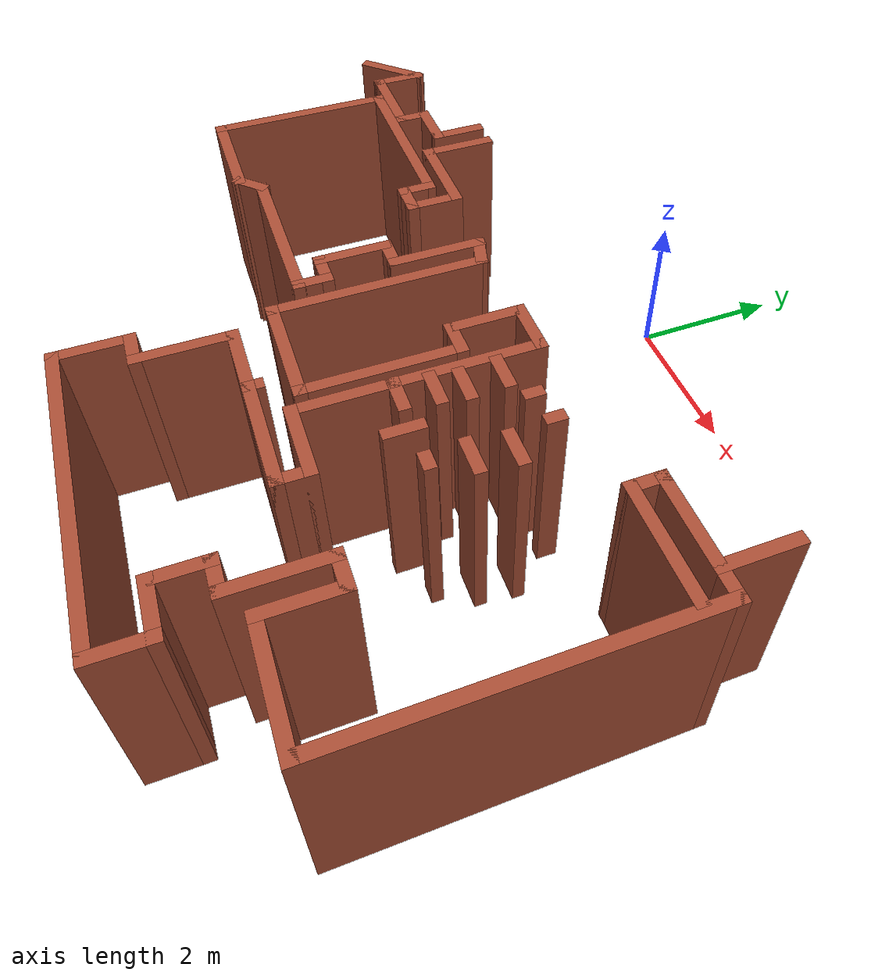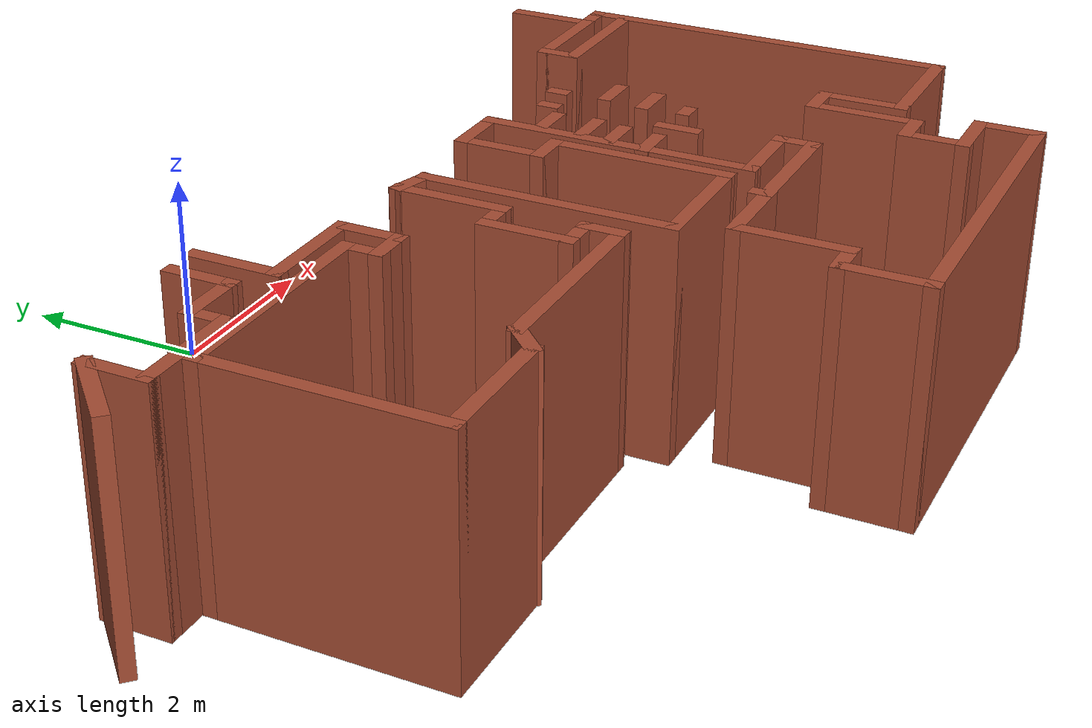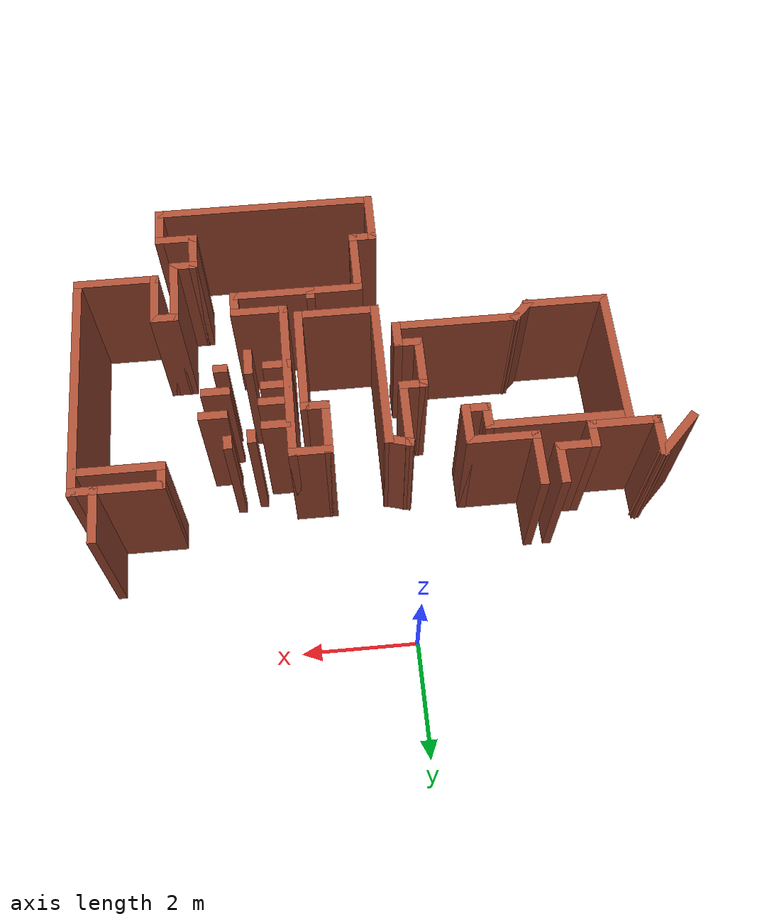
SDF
<sdf version="1.6">
 <model name="map_45">
  <pose>0.29683 -1.90359 0 0 -0 0</pose>
  <link name="Wall_11">
   <collision name="Wall_11_Collision">
    <geometry><box><size>1 0.15 2.5</size></box></geometry>
    <pose>0 0 1.25 0 -0 0</pose>
   </collision>
   <visual name="Wall_11_Visual">
    <pose>0 0 1.25 0 -0 0</pose>
    <geometry><box><size>1 0.15 2.5</size></box></geometry>
    <material>
     <script><uri>file://media/materials/scripts/gazebo.material</uri><name>Gazebo/Bricks</name></script>
     <ambient>1 1 1 1</ambient>
    </material>
    <meta><layer>0</layer></meta>
   </visual>
   <pose>-4.82725 -0.500111 0 0 -0 0.785398</pose>
  </link>
  <link name="Wall_12">
   <collision name="Wall_12_Collision">
    <geometry><box><size>0.75 0.15 2.5</size></box></geometry>
    <pose>0 0 1.25 0 -0 0</pose>
   </collision>
   <visual name="Wall_12_Visual">
    <pose>0 0 1.25 0 -0 0</pose>
    <geometry><box><size>0.75 0.15 2.5</size></box></geometry>
    <material>
     <script><uri>file://media/materials/scripts/gazebo.material</uri><name>Gazebo/Bricks</name></script>
     <ambient>1 1 1 1</ambient>
    </material>
    <meta><layer>0</layer></meta>
   </visual>
   <pose>-4.52673 -0.499591 0 0 -0 -1.5708</pose>
  </link>
  <link name="Wall_130">
   <collision name="Wall_130_Collision">
    <geometry><box><size>1.25 0.15 2.5</size></box></geometry>
    <pose>0 0 1.25 0 -0 0</pose>
   </collision>
   <visual name="Wall_130_Visual">
    <pose>0 0 1.25 0 -0 0</pose>
    <geometry><box><size>1.25 0.15 2.5</size></box></geometry>
    <material>
     <script><uri>file://media/materials/scripts/gazebo.material</uri><name>Gazebo/Bricks</name></script>
     <ambient>1 1 1 1</ambient>
    </material>
    <meta><layer>0</layer></meta>
   </visual>
   <pose>4.25883 -0.34269 0 0 -0 3.14159</pose>
  </link>
  <link name="Wall_131">
   <collision name="Wall_131_Collision">
    <geometry><box><size>0.5 0.15 2.5</size></box></geometry>
    <pose>0 0 1.25 0 -0 0</pose>
   </collision>
   <visual name="Wall_131_Visual">
    <pose>0 0 1.25 0 -0 0</pose>
    <geometry><box><size>0.5 0.15 2.5</size></box></geometry>
    <material>
     <script><uri>file://media/materials/scripts/gazebo.material</uri><name>Gazebo/Bricks</name></script>
     <ambient>1 1 1 1</ambient>
    </material>
    <meta><layer>0</layer></meta>
   </visual>
   <pose>3.70883 -0.51769 0 0 -0 -1.5708</pose>
  </link>
  <link name="Wall_132">
   <collision name="Wall_132_Collision">
    <geometry><box><size>1.5 0.15 2.5</size></box></geometry>
    <pose>0 0 1.25 0 -0 0</pose>
   </collision>
   <visual name="Wall_132_Visual">
    <pose>0 0 1.25 0 -0 0</pose>
    <geometry><box><size>1.5 0.15 2.5</size></box></geometry>
    <material>
     <script><uri>file://media/materials/scripts/gazebo.material</uri><name>Gazebo/Bricks</name></script>
     <ambient>1 1 1 1</ambient>
    </material>
    <meta><layer>0</layer></meta>
   </visual>
   <pose>4.38383 -0.69269 0 0 -0 0</pose>
  </link>
  <link name="Wall_134">
   <collision name="Wall_134_Collision">
    <geometry><box><size>0.5 0.15 2.5</size></box></geometry>
    <pose>0 0 1.25 0 -0 0</pose>
   </collision>
   <visual name="Wall_134_Visual">
    <pose>0 0 1.25 0 -0 0</pose>
    <geometry><box><size>0.5 0.15 2.5</size></box></geometry>
    <material>
     <script><uri>file://media/materials/scripts/gazebo.material</uri><name>Gazebo/Bricks</name></script>
     <ambient>1 1 1 1</ambient>
    </material>
    <meta><layer>0</layer></meta>
   </visual>
   <pose>1.80767 -1.29266 0 0 -0 0</pose>
  </link>
  <link name="Wall_136">
   <collision name="Wall_136_Collision">
    <geometry><box><size>0.5 0.15 2.5</size></box></geometry>
    <pose>0 0 1.25 0 -0 0</pose>
   </collision>
   <visual name="Wall_136_Visual">
    <pose>0 0 1.25 0 -0 0</pose>
    <geometry><box><size>0.5 0.15 2.5</size></box></geometry>
    <material>
     <script><uri>file://media/materials/scripts/gazebo.material</uri><name>Gazebo/Bricks</name></script>
     <ambient>1 1 1 1</ambient>
    </material>
    <meta><layer>0</layer></meta>
   </visual>
   <pose>1.83427 -1.74486 0 0 -0 0</pose>
  </link>
  <link name="Wall_138">
   <collision name="Wall_138_Collision">
    <geometry><box><size>0.5 0.15 2.5</size></box></geometry>
    <pose>0 0 1.25 0 -0 0</pose>
   </collision>
   <visual name="Wall_138_Visual">
    <pose>0 0 1.25 0 -0 0</pose>
    <geometry><box><size>0.5 0.15 2.5</size></box></geometry>
    <material>
     <script><uri>file://media/materials/scripts/gazebo.material</uri><name>Gazebo/Bricks</name></script>
     <ambient>1 1 1 1</ambient>
    </material>
    <meta><layer>0</layer></meta>
   </visual>
   <pose>1.78107 -2.06406 0 0 -0 0</pose>
  </link>
  <link name="Wall_140">
   <collision name="Wall_140_Collision">
    <geometry><box><size>0.5 0.15 2.5</size></box></geometry>
    <pose>0 0 1.25 0 -0 0</pose>
   </collision>
   <visual name="Wall_140_Visual">
    <pose>0 0 1.25 0 -0 0</pose>
    <geometry><box><size>0.5 0.15 2.5</size></box></geometry>
    <material>
     <script><uri>file://media/materials/scripts/gazebo.material</uri><name>Gazebo/Bricks</name></script>
     <ambient>1 1 1 1</ambient>
    </material>
    <meta><layer>0</layer></meta>
   </visual>
   <pose>1.72787 -2.46306 0 0 -0 0</pose>
  </link>
  <link name="Wall_142">
   <collision name="Wall_142_Collision">
    <geometry><box><size>0.25 0.15 2.5</size></box></geometry>
    <pose>0 0 1.25 0 -0 0</pose>
   </collision>
   <visual name="Wall_142_Visual">
    <pose>0 0 1.25 0 -0 0</pose>
    <geometry><box><size>0.25 0.15 2.5</size></box></geometry>
    <material>
     <script><uri>file://media/materials/scripts/gazebo.material</uri><name>Gazebo/Bricks</name></script>
     <ambient>1 1 1 1</ambient>
    </material>
    <meta><layer>0</layer></meta>
   </visual>
   <pose>2.69348 -2.46306 0 0 -0 0</pose>
  </link>
  <link name="Wall_144">
   <collision name="Wall_144_Collision">
    <geometry><box><size>0.5 0.15 2.5</size></box></geometry>
    <pose>0 0 1.25 0 -0 0</pose>
   </collision>
   <visual name="Wall_144_Visual">
    <pose>0 0 1.25 0 -0 0</pose>
    <geometry><box><size>0.5 0.15 2.5</size></box></geometry>
    <material>
     <script><uri>file://media/materials/scripts/gazebo.material</uri><name>Gazebo/Bricks</name></script>
     <ambient>1 1 1 1</ambient>
    </material>
    <meta><layer>0</layer></meta>
   </visual>
   <pose>2.79188 -2.01086 0 0 -0 0</pose>
  </link>
  <link name="Wall_146">
   <collision name="Wall_146_Collision">
    <geometry><box><size>0.5 0.15 2.5</size></box></geometry>
    <pose>0 0 1.25 0 -0 0</pose>
   </collision>
   <visual name="Wall_146_Visual">
    <pose>0 0 1.25 0 -0 0</pose>
    <geometry><box><size>0.5 0.15 2.5</size></box></geometry>
    <material>
     <script><uri>file://media/materials/scripts/gazebo.material</uri><name>Gazebo/Bricks</name></script>
     <ambient>1 1 1 1</ambient>
    </material>
    <meta><layer>0</layer></meta>
   </visual>
   <pose>2.84508 -1.55866 0 0 -0 0</pose>
  </link>
  <link name="Wall_148">
   <collision name="Wall_148_Collision">
    <geometry><box><size>0.25 0.15 2.5</size></box></geometry>
    <pose>0 0 1.25 0 -0 0</pose>
   </collision>
   <visual name="Wall_148_Visual">
    <pose>0 0 1.25 0 -0 0</pose>
    <geometry><box><size>0.25 0.15 2.5</size></box></geometry>
    <material>
     <script><uri>file://media/materials/scripts/gazebo.material</uri><name>Gazebo/Bricks</name></script>
     <ambient>1 1 1 1</ambient>
    </material>
    <meta><layer>0</layer></meta>
   </visual>
   <pose>2.21787 -1.10325 0 0 -0 -1.5708</pose>
  </link>
  <link name="Wall_15">
   <collision name="Wall_15_Collision">
    <geometry><box><size>1.25 0.15 2.5</size></box></geometry>
    <pose>0 0 1.25 0 -0 0</pose>
   </collision>
   <visual name="Wall_15_Visual">
    <pose>0 0 1.25 0 -0 0</pose>
    <geometry><box><size>1.25 0.15 2.5</size></box></geometry>
    <material>
     <script><uri>file://media/materials/scripts/gazebo.material</uri><name>Gazebo/Bricks</name></script>
     <ambient>1 1 1 1</ambient>
    </material>
    <meta><layer>0</layer></meta>
   </visual>
   <pose>-3.97673 -0.799591 0 0 -0 0</pose>
  </link>
  <link name="Wall_150">
   <collision name="Wall_150_Collision">
    <geometry><box><size>0.25 0.15 2.5</size></box></geometry>
    <pose>0 0 1.25 0 -0 0</pose>
   </collision>
   <visual name="Wall_150_Visual">
    <pose>0 0 1.25 0 -0 0</pose>
    <geometry><box><size>0.25 0.15 2.5</size></box></geometry>
    <material>
     <script><uri>file://media/materials/scripts/gazebo.material</uri><name>Gazebo/Bricks</name></script>
     <ambient>1 1 1 1</ambient>
    </material>
    <meta><layer>0</layer></meta>
   </visual>
   <pose>2.61688 -1.02345 0 0 -0 -1.5708</pose>
  </link>
  <link name="Wall_152">
   <collision name="Wall_152_Collision">
    <geometry><box><size>0.5 0.15 2.5</size></box></geometry>
    <pose>0 0 1.25 0 -0 0</pose>
   </collision>
   <visual name="Wall_152_Visual">
    <pose>0 0 1.25 0 -0 0</pose>
    <geometry><box><size>0.5 0.15 2.5</size></box></geometry>
    <material>
     <script><uri>file://media/materials/scripts/gazebo.material</uri><name>Gazebo/Bricks</name></script>
     <ambient>1 1 1 1</ambient>
    </material>
    <meta><layer>0</layer></meta>
   </visual>
   <pose>2.21787 -2.55826 0 0 -0 -1.5708</pose>
  </link>
  <link name="Wall_16">
   <collision name="Wall_16_Collision">
    <geometry><box><size>0.5 0.15 2.5</size></box></geometry>
    <pose>0 0 1.25 0 -0 0</pose>
   </collision>
   <visual name="Wall_16_Visual">
    <pose>0 0 1.25 0 -0 0</pose>
    <geometry><box><size>0.5 0.15 2.5</size></box></geometry>
    <material>
     <script><uri>file://media/materials/scripts/gazebo.material</uri><name>Gazebo/Bricks</name></script>
     <ambient>1 1 1 1</ambient>
    </material>
    <meta><layer>0</layer></meta>
   </visual>
   <pose>-3.42673 -0.624591 0 0 -0 1.5708</pose>
  </link>
  <link name="Wall_17">
   <collision name="Wall_17_Collision">
    <geometry><box><size>0.75 0.15 2.5</size></box></geometry>
    <pose>0 0 1.25 0 -0 0</pose>
   </collision>
   <visual name="Wall_17_Visual">
    <pose>0 0 1.25 0 -0 0</pose>
    <geometry><box><size>0.75 0.15 2.5</size></box></geometry>
    <material>
     <script><uri>file://media/materials/scripts/gazebo.material</uri><name>Gazebo/Bricks</name></script>
     <ambient>1 1 1 1</ambient>
    </material>
    <meta><layer>0</layer></meta>
   </visual>
   <pose>-3.12673 -0.449591 0 0 -0 0</pose>
  </link>
  <link name="Wall_18">
   <collision name="Wall_18_Collision">
    <geometry><box><size>0.75 0.15 2.5</size></box></geometry>
    <pose>0 0 1.25 0 -0 0</pose>
   </collision>
   <visual name="Wall_18_Visual">
    <pose>0 0 1.25 0 -0 0</pose>
    <geometry><box><size>0.75 0.15 2.5</size></box></geometry>
    <material>
     <script><uri>file://media/materials/scripts/gazebo.material</uri><name>Gazebo/Bricks</name></script>
     <ambient>1 1 1 1</ambient>
    </material>
    <meta><layer>0</layer></meta>
   </visual>
   <pose>-2.82673 -0.149591 0 0 -0 1.5708</pose>
  </link>
  <link name="Wall_22">
   <collision name="Wall_22_Collision">
    <geometry><box><size>1 0.15 2.5</size></box></geometry>
    <pose>0 0 1.25 0 -0 0</pose>
   </collision>
   <visual name="Wall_22_Visual">
    <pose>0 0 1.25 0 -0 0</pose>
    <geometry><box><size>1 0.15 2.5</size></box></geometry>
    <material>
     <script><uri>file://media/materials/scripts/gazebo.material</uri><name>Gazebo/Bricks</name></script>
     <ambient>1 1 1 1</ambient>
    </material>
    <meta><layer>0</layer></meta>
   </visual>
   <pose>-2.47673 -0.274591 0 0 -0 -1.5708</pose>
  </link>
  <link name="Wall_23">
   <collision name="Wall_23_Collision">
    <geometry><box><size>1.25 0.15 2.5</size></box></geometry>
    <pose>0 0 1.25 0 -0 0</pose>
   </collision>
   <visual name="Wall_23_Visual">
    <pose>0 0 1.25 0 -0 0</pose>
    <geometry><box><size>1.25 0.15 2.5</size></box></geometry>
    <material>
     <script><uri>file://media/materials/scripts/gazebo.material</uri><name>Gazebo/Bricks</name></script>
     <ambient>1 1 1 1</ambient>
    </material>
    <meta><layer>0</layer></meta>
   </visual>
   <pose>-1.92673 -0.699591 0 0 -0 0</pose>
  </link>
  <link name="Wall_24">
   <collision name="Wall_24_Collision">
    <geometry><box><size>0.75 0.15 2.5</size></box></geometry>
    <pose>0 0 1.25 0 -0 0</pose>
   </collision>
   <visual name="Wall_24_Visual">
    <pose>0 0 1.25 0 -0 0</pose>
    <geometry><box><size>0.75 0.15 2.5</size></box></geometry>
    <material>
     <script><uri>file://media/materials/scripts/gazebo.material</uri><name>Gazebo/Bricks</name></script>
     <ambient>1 1 1 1</ambient>
    </material>
    <meta><layer>0</layer></meta>
   </visual>
   <pose>-1.37673 -0.999591 0 0 -0 -1.5708</pose>
  </link>
  <link name="Wall_25">
   <collision name="Wall_25_Collision">
    <geometry><box><size>0.5 0.15 2.5</size></box></geometry>
    <pose>0 0 1.25 0 -0 0</pose>
   </collision>
   <visual name="Wall_25_Visual">
    <pose>0 0 1.25 0 -0 0</pose>
    <geometry><box><size>0.5 0.15 2.5</size></box></geometry>
    <material>
     <script><uri>file://media/materials/scripts/gazebo.material</uri><name>Gazebo/Bricks</name></script>
     <ambient>1 1 1 1</ambient>
    </material>
    <meta><layer>0</layer></meta>
   </visual>
   <pose>-1.55173 -1.29959 0 0 -0 3.14159</pose>
  </link>
  <link name="Wall_26">
   <collision name="Wall_26_Collision">
    <geometry><box><size>0.5 0.15 2.5</size></box></geometry>
    <pose>0 0 1.25 0 -0 0</pose>
   </collision>
   <visual name="Wall_26_Visual">
    <pose>0 0 1.25 0 -0 0</pose>
    <geometry><box><size>0.5 0.15 2.5</size></box></geometry>
    <material>
     <script><uri>file://media/materials/scripts/gazebo.material</uri><name>Gazebo/Bricks</name></script>
     <ambient>1 1 1 1</ambient>
    </material>
    <meta><layer>0</layer></meta>
   </visual>
   <pose>-1.72673 -1.12459 0 0 -0 1.5708</pose>
  </link>
  <link name="Wall_27">
   <collision name="Wall_27_Collision">
    <geometry><box><size>2.5 0.15 2.5</size></box></geometry>
    <pose>0 0 1.25 0 -0 0</pose>
   </collision>
   <visual name="Wall_27_Visual">
    <pose>0 0 1.25 0 -0 0</pose>
    <geometry><box><size>2.5 0.15 2.5</size></box></geometry>
    <material>
     <script><uri>file://media/materials/scripts/gazebo.material</uri><name>Gazebo/Bricks</name></script>
     <ambient>1 1 1 1</ambient>
    </material>
    <meta><layer>0</layer></meta>
   </visual>
   <pose>-2.90173 -0.949591 0 0 -0 3.14159</pose>
  </link>
  <link name="Wall_28">
   <collision name="Wall_28_Collision">
    <geometry><box><size>2.5 0.15 2.5</size></box></geometry>
    <pose>0 0 1.25 0 -0 0</pose>
   </collision>
   <visual name="Wall_28_Visual">
    <pose>0 0 1.25 0 -0 0</pose>
    <geometry><box><size>2.5 0.15 2.5</size></box></geometry>
    <material>
     <script><uri>file://media/materials/scripts/gazebo.material</uri><name>Gazebo/Bricks</name></script>
     <ambient>1 1 1 1</ambient>
    </material>
    <meta><layer>0</layer></meta>
   </visual>
   <pose>-4.07673 -2.12459 0 0 -0 -1.5708</pose>
  </link>
  <link name="Wall_29">
   <collision name="Wall_29_Collision">
    <geometry><box><size>1.5 0.15 2.5</size></box></geometry>
    <pose>0 0 1.25 0 -0 0</pose>
   </collision>
   <visual name="Wall_29_Visual">
    <pose>0 0 1.25 0 -0 0</pose>
    <geometry><box><size>1.5 0.15 2.5</size></box></geometry>
    <material>
     <script><uri>file://media/materials/scripts/gazebo.material</uri><name>Gazebo/Bricks</name></script>
     <ambient>1 1 1 1</ambient>
    </material>
    <meta><layer>0</layer></meta>
   </visual>
   <pose>-3.40173 -3.29959 0 0 -0 0</pose>
  </link>
  <link name="Wall_30">
   <collision name="Wall_30_Collision">
    <geometry><box><size>0.5 0.15 2.5</size></box></geometry>
    <pose>0 0 1.25 0 -0 0</pose>
   </collision>
   <visual name="Wall_30_Visual">
    <pose>0 0 1.25 0 -0 0</pose>
    <geometry><box><size>0.5 0.15 2.5</size></box></geometry>
    <material>
     <script><uri>file://media/materials/scripts/gazebo.material</uri><name>Gazebo/Bricks</name></script>
     <ambient>1 1 1 1</ambient>
    </material>
    <meta><layer>0</layer></meta>
   </visual>
   <pose>-2.60298 -3.17585 0 0 -0 0.785398</pose>
  </link>
  <link name="Wall_31">
   <collision name="Wall_31_Collision">
    <geometry><box><size>2.25 0.15 2.5</size></box></geometry>
    <pose>0 0 1.25 0 -0 0</pose>
   </collision>
   <visual name="Wall_31_Visual">
    <pose>0 0 1.25 0 -0 0</pose>
    <geometry><box><size>2.25 0.15 2.5</size></box></geometry>
    <material>
     <script><uri>file://media/materials/scripts/gazebo.material</uri><name>Gazebo/Bricks</name></script>
     <ambient>1 1 1 1</ambient>
    </material>
    <meta><layer>0</layer></meta>
   </visual>
   <pose>-1.42924 -3.0521 0 0 -0 0</pose>
  </link>
  <link name="Wall_32">
   <collision name="Wall_32_Collision">
    <geometry><box><size>0.5 0.15 2.5</size></box></geometry>
    <pose>0 0 1.25 0 -0 0</pose>
   </collision>
   <visual name="Wall_32_Visual">
    <pose>0 0 1.25 0 -0 0</pose>
    <geometry><box><size>0.5 0.15 2.5</size></box></geometry>
    <material>
     <script><uri>file://media/materials/scripts/gazebo.material</uri><name>Gazebo/Bricks</name></script>
     <ambient>1 1 1 1</ambient>
    </material>
    <meta><layer>0</layer></meta>
   </visual>
   <pose>-0.37924 -2.8771 0 0 -0 1.5708</pose>
  </link>
  <link name="Wall_33">
   <collision name="Wall_33_Collision">
    <geometry><box><size>0.5 0.15 2.5</size></box></geometry>
    <pose>0 0 1.25 0 -0 0</pose>
   </collision>
   <visual name="Wall_33_Visual">
    <pose>0 0 1.25 0 -0 0</pose>
    <geometry><box><size>0.5 0.15 2.5</size></box></geometry>
    <material>
     <script><uri>file://media/materials/scripts/gazebo.material</uri><name>Gazebo/Bricks</name></script>
     <ambient>1 1 1 1</ambient>
    </material>
    <meta><layer>0</layer></meta>
   </visual>
   <pose>-0.55424 -2.7021 0 0 -0 3.14159</pose>
  </link>
  <link name="Wall_34">
   <collision name="Wall_34_Collision">
    <geometry><box><size>1 0.15 2.5</size></box></geometry>
    <pose>0 0 1.25 0 -0 0</pose>
   </collision>
   <visual name="Wall_34_Visual">
    <pose>0 0 1.25 0 -0 0</pose>
    <geometry><box><size>1 0.15 2.5</size></box></geometry>
    <material>
     <script><uri>file://media/materials/scripts/gazebo.material</uri><name>Gazebo/Bricks</name></script>
     <ambient>1 1 1 1</ambient>
    </material>
    <meta><layer>0</layer></meta>
   </visual>
   <pose>-0.72924 -2.2771 0 0 -0 1.5708</pose>
  </link>
  <link name="Wall_37">
   <collision name="Wall_37_Collision">
    <geometry><box><size>0.5 0.15 2.5</size></box></geometry>
    <pose>0 0 1.25 0 -0 0</pose>
   </collision>
   <visual name="Wall_37_Visual">
    <pose>0 0 1.25 0 -0 0</pose>
    <geometry><box><size>0.5 0.15 2.5</size></box></geometry>
    <material>
     <script><uri>file://media/materials/scripts/gazebo.material</uri><name>Gazebo/Bricks</name></script>
     <ambient>1 1 1 1</ambient>
    </material>
    <meta><layer>0</layer></meta>
   </visual>
   <pose>-0.55424 -1.8521 0 0 -0 0</pose>
  </link>
  <link name="Wall_40">
   <collision name="Wall_40_Collision">
    <geometry><box><size>1.25 0.15 2.5</size></box></geometry>
    <pose>0 0 1.25 0 -0 0</pose>
   </collision>
   <visual name="Wall_40_Visual">
    <pose>0 0 1.25 0 -0 0</pose>
    <geometry><box><size>1.25 0.15 2.5</size></box></geometry>
    <material>
     <script><uri>file://media/materials/scripts/gazebo.material</uri><name>Gazebo/Bricks</name></script>
     <ambient>1 1 1 1</ambient>
    </material>
    <meta><layer>0</layer></meta>
   </visual>
   <pose>-0.37924 -1.3021 0 0 -0 1.5708</pose>
  </link>
  <link name="Wall_41">
   <collision name="Wall_41_Collision">
    <geometry><box><size>0.5 0.15 2.5</size></box></geometry>
    <pose>0 0 1.25 0 -0 0</pose>
   </collision>
   <visual name="Wall_41_Visual">
    <pose>0 0 1.25 0 -0 0</pose>
    <geometry><box><size>0.5 0.15 2.5</size></box></geometry>
    <material>
     <script><uri>file://media/materials/scripts/gazebo.material</uri><name>Gazebo/Bricks</name></script>
     <ambient>1 1 1 1</ambient>
    </material>
    <meta><layer>0</layer></meta>
   </visual>
   <pose>-0.210203 -0.797397 0 0 -0 -0.261799</pose>
  </link>
  <link name="Wall_42">
   <collision name="Wall_42_Collision">
    <geometry><box><size>2.75 0.15 2.5</size></box></geometry>
    <pose>0 0 1.25 0 -0 0</pose>
   </collision>
   <visual name="Wall_42_Visual">
    <pose>0 0 1.25 0 -0 0</pose>
    <geometry><box><size>2.75 0.15 2.5</size></box></geometry>
    <material>
     <script><uri>file://media/materials/scripts/gazebo.material</uri><name>Gazebo/Bricks</name></script>
     <ambient>1 1 1 1</ambient>
    </material>
    <meta><layer>0</layer></meta>
   </visual>
   <pose>-0.041166 -2.14269 0 0 -0 -1.5708</pose>
  </link>
  <link name="Wall_45">
   <collision name="Wall_45_Collision">
    <geometry><box><size>1.5 0.15 2.5</size></box></geometry>
    <pose>0 0 1.25 0 -0 0</pose>
   </collision>
   <visual name="Wall_45_Visual">
    <pose>0 0 1.25 0 -0 0</pose>
    <geometry><box><size>1.5 0.15 2.5</size></box></geometry>
    <material>
     <script><uri>file://media/materials/scripts/gazebo.material</uri><name>Gazebo/Bricks</name></script>
     <ambient>1 1 1 1</ambient>
    </material>
    <meta><layer>0</layer></meta>
   </visual>
   <pose>0.633834 -3.44269 0 0 -0 0</pose>
  </link>
  <link name="Wall_46">
   <collision name="Wall_46_Collision">
    <geometry><box><size>2 0.15 2.5</size></box></geometry>
    <pose>0 0 1.25 0 -0 0</pose>
   </collision>
   <visual name="Wall_46_Visual">
    <pose>0 0 1.25 0 -0 0</pose>
    <geometry><box><size>2 0.15 2.5</size></box></geometry>
    <material>
     <script><uri>file://media/materials/scripts/gazebo.material</uri><name>Gazebo/Bricks</name></script>
     <ambient>1 1 1 1</ambient>
    </material>
    <meta><layer>0</layer></meta>
   </visual>
   <pose>1.30883 -2.51769 0 0 -0 1.5708</pose>
  </link>
  <link name="Wall_47">
   <collision name="Wall_47_Collision">
    <geometry><box><size>0.5 0.15 2.5</size></box></geometry>
    <pose>0 0 1.25 0 -0 0</pose>
   </collision>
   <visual name="Wall_47_Visual">
    <pose>0 0 1.25 0 -0 0</pose>
    <geometry><box><size>0.5 0.15 2.5</size></box></geometry>
    <material>
     <script><uri>file://media/materials/scripts/gazebo.material</uri><name>Gazebo/Bricks</name></script>
     <ambient>1 1 1 1</ambient>
    </material>
    <meta><layer>0</layer></meta>
   </visual>
   <pose>1.13383 -1.59269 0 0 -0 3.14159</pose>
  </link>
  <link name="Wall_48">
   <collision name="Wall_48_Collision">
    <geometry><box><size>1 0.15 2.5</size></box></geometry>
    <pose>0 0 1.25 0 -0 0</pose>
   </collision>
   <visual name="Wall_48_Visual">
    <pose>0 0 1.25 0 -0 0</pose>
    <geometry><box><size>1 0.15 2.5</size></box></geometry>
    <material>
     <script><uri>file://media/materials/scripts/gazebo.material</uri><name>Gazebo/Bricks</name></script>
     <ambient>1 1 1 1</ambient>
    </material>
    <meta><layer>0</layer></meta>
   </visual>
   <pose>0.958834 -1.16769 0 0 -0 1.5708</pose>
  </link>
  <link name="Wall_49">
   <collision name="Wall_49_Collision">
    <geometry><box><size>0.75 0.15 2.5</size></box></geometry>
    <pose>0 0 1.25 0 -0 0</pose>
   </collision>
   <visual name="Wall_49_Visual">
    <pose>0 0 1.25 0 -0 0</pose>
    <geometry><box><size>0.75 0.15 2.5</size></box></geometry>
    <material>
     <script><uri>file://media/materials/scripts/gazebo.material</uri><name>Gazebo/Bricks</name></script>
     <ambient>1 1 1 1</ambient>
    </material>
    <meta><layer>0</layer></meta>
   </visual>
   <pose>1.25883 -0.74269 0 0 -0 0</pose>
  </link>
  <link name="Wall_50">
   <collision name="Wall_50_Collision">
    <geometry><box><size>3 0.15 2.5</size></box></geometry>
    <pose>0 0 1.25 0 -0 0</pose>
   </collision>
   <visual name="Wall_50_Visual">
    <pose>0 0 1.25 0 -0 0</pose>
    <geometry><box><size>3 0.15 2.5</size></box></geometry>
    <material>
     <script><uri>file://media/materials/scripts/gazebo.material</uri><name>Gazebo/Bricks</name></script>
     <ambient>1 1 1 1</ambient>
    </material>
    <meta><layer>0</layer></meta>
   </visual>
   <pose>1.55883 -2.16769 0 0 -0 -1.5708</pose>
  </link>
  <link name="Wall_51">
   <collision name="Wall_51_Collision">
    <geometry><box><size>1 0.15 2.5</size></box></geometry>
    <pose>0 0 1.25 0 -0 0</pose>
   </collision>
   <visual name="Wall_51_Visual">
    <pose>0 0 1.25 0 -0 0</pose>
    <geometry><box><size>1 0.15 2.5</size></box></geometry>
    <material>
     <script><uri>file://media/materials/scripts/gazebo.material</uri><name>Gazebo/Bricks</name></script>
     <ambient>1 1 1 1</ambient>
    </material>
    <meta><layer>0</layer></meta>
   </visual>
   <pose>1.98383 -3.59269 0 0 -0 0</pose>
  </link>
  <link name="Wall_52">
   <collision name="Wall_52_Collision">
    <geometry><box><size>0.5 0.15 2.5</size></box></geometry>
    <pose>0 0 1.25 0 -0 0</pose>
   </collision>
   <visual name="Wall_52_Visual">
    <pose>0 0 1.25 0 -0 0</pose>
    <geometry><box><size>0.5 0.15 2.5</size></box></geometry>
    <material>
     <script><uri>file://media/materials/scripts/gazebo.material</uri><name>Gazebo/Bricks</name></script>
     <ambient>1 1 1 1</ambient>
    </material>
    <meta><layer>0</layer></meta>
   </visual>
   <pose>2.40883 -3.76769 0 0 -0 -1.5708</pose>
  </link>
  <link name="Wall_53">
   <collision name="Wall_53_Collision">
    <geometry><box><size>1.5 0.15 2.5</size></box></geometry>
    <pose>0 0 1.25 0 -0 0</pose>
   </collision>
   <visual name="Wall_53_Visual">
    <pose>0 0 1.25 0 -0 0</pose>
    <geometry><box><size>1.5 0.15 2.5</size></box></geometry>
    <material>
     <script><uri>file://media/materials/scripts/gazebo.material</uri><name>Gazebo/Bricks</name></script>
     <ambient>1 1 1 1</ambient>
    </material>
    <meta><layer>0</layer></meta>
   </visual>
   <pose>1.73383 -3.94269 0 0 -0 3.14159</pose>
  </link>
  <link name="Wall_54">
   <collision name="Wall_54_Collision">
    <geometry><box><size>0.25 0.15 2.5</size></box></geometry>
    <pose>0 0 1.25 0 -0 0</pose>
   </collision>
   <visual name="Wall_54_Visual">
    <pose>0 0 1.25 0 -0 0</pose>
    <geometry><box><size>0.25 0.15 2.5</size></box></geometry>
    <material>
     <script><uri>file://media/materials/scripts/gazebo.material</uri><name>Gazebo/Bricks</name></script>
     <ambient>1 1 1 1</ambient>
    </material>
    <meta><layer>0</layer></meta>
   </visual>
   <pose>1.05883 -3.89269 0 0 -0 1.5708</pose>
  </link>
  <link name="Wall_57">
   <collision name="Wall_57_Collision">
    <geometry><box><size>1 0.15 2.5</size></box></geometry>
    <pose>0 0 1.25 0 -0 0</pose>
   </collision>
   <visual name="Wall_57_Visual">
    <pose>0 0 1.25 0 -0 0</pose>
    <geometry><box><size>1 0.15 2.5</size></box></geometry>
    <material>
     <script><uri>file://media/materials/scripts/gazebo.material</uri><name>Gazebo/Bricks</name></script>
     <ambient>1 1 1 1</ambient>
    </material>
    <meta><layer>0</layer></meta>
   </visual>
   <pose>0.633834 -3.94269 0 0 -0 3.14159</pose>
  </link>
  <link name="Wall_58">
   <collision name="Wall_58_Collision">
    <geometry><box><size>1.25 0.15 2.5</size></box></geometry>
    <pose>0 0 1.25 0 -0 0</pose>
   </collision>
   <visual name="Wall_58_Visual">
    <pose>0 0 1.25 0 -0 0</pose>
    <geometry><box><size>1.25 0.15 2.5</size></box></geometry>
    <material>
     <script><uri>file://media/materials/scripts/gazebo.material</uri><name>Gazebo/Bricks</name></script>
     <ambient>1 1 1 1</ambient>
    </material>
    <meta><layer>0</layer></meta>
   </visual>
   <pose>0.208834 -4.49269 0 0 -0 -1.5708</pose>
  </link>
  <link name="Wall_59">
   <collision name="Wall_59_Collision">
    <geometry><box><size>0.5 0.15 2.5</size></box></geometry>
    <pose>0 0 1.25 0 -0 0</pose>
   </collision>
   <visual name="Wall_59_Visual">
    <pose>0 0 1.25 0 -0 0</pose>
    <geometry><box><size>0.5 0.15 2.5</size></box></geometry>
    <material>
     <script><uri>file://media/materials/scripts/gazebo.material</uri><name>Gazebo/Bricks</name></script>
     <ambient>1 1 1 1</ambient>
    </material>
    <meta><layer>0</layer></meta>
   </visual>
   <pose>0.033834 -5.04269 0 0 -0 3.14159</pose>
  </link>
  <link name="Wall_60">
   <collision name="Wall_60_Collision">
    <geometry><box><size>1 0.15 2.5</size></box></geometry>
    <pose>0 0 1.25 0 -0 0</pose>
   </collision>
   <visual name="Wall_60_Visual">
    <pose>0 0 1.25 0 -0 0</pose>
    <geometry><box><size>1 0.15 2.5</size></box></geometry>
    <material>
     <script><uri>file://media/materials/scripts/gazebo.material</uri><name>Gazebo/Bricks</name></script>
     <ambient>1 1 1 1</ambient>
    </material>
    <meta><layer>0</layer></meta>
   </visual>
   <pose>-0.141166 -5.46769 0 0 -0 -1.5708</pose>
  </link>
  <link name="Wall_61">
   <collision name="Wall_61_Collision">
    <geometry><box><size>4 0.15 2.5</size></box></geometry>
    <pose>0 0 1.25 0 -0 0</pose>
   </collision>
   <visual name="Wall_61_Visual">
    <pose>0 0 1.25 0 -0 0</pose>
    <geometry><box><size>4 0.15 2.5</size></box></geometry>
    <material>
     <script><uri>file://media/materials/scripts/gazebo.material</uri><name>Gazebo/Bricks</name></script>
     <ambient>1 1 1 1</ambient>
    </material>
    <meta><layer>0</layer></meta>
   </visual>
   <pose>1.78383 -5.89269 0 0 -0 0</pose>
  </link>
  <link name="Wall_62">
   <collision name="Wall_62_Collision">
    <geometry><box><size>0.75 0.15 2.5</size></box></geometry>
    <pose>0 0 1.25 0 -0 0</pose>
   </collision>
   <visual name="Wall_62_Visual">
    <pose>0 0 1.25 0 -0 0</pose>
    <geometry><box><size>0.75 0.15 2.5</size></box></geometry>
    <material>
     <script><uri>file://media/materials/scripts/gazebo.material</uri><name>Gazebo/Bricks</name></script>
     <ambient>1 1 1 1</ambient>
    </material>
    <meta><layer>0</layer></meta>
   </visual>
   <pose>3.70883 -5.59269 0 0 -0 1.5708</pose>
  </link>
  <link name="Wall_63">
   <collision name="Wall_63_Collision">
    <geometry><box><size>0.75 0.15 2.5</size></box></geometry>
    <pose>0 0 1.25 0 -0 0</pose>
   </collision>
   <visual name="Wall_63_Visual">
    <pose>0 0 1.25 0 -0 0</pose>
    <geometry><box><size>0.75 0.15 2.5</size></box></geometry>
    <material>
     <script><uri>file://media/materials/scripts/gazebo.material</uri><name>Gazebo/Bricks</name></script>
     <ambient>1 1 1 1</ambient>
    </material>
    <meta><layer>0</layer></meta>
   </visual>
   <pose>3.40883 -5.29269 0 0 -0 3.14159</pose>
  </link>
  <link name="Wall_64">
   <collision name="Wall_64_Collision">
    <geometry><box><size>0.75 0.15 2.5</size></box></geometry>
    <pose>0 0 1.25 0 -0 0</pose>
   </collision>
   <visual name="Wall_64_Visual">
    <pose>0 0 1.25 0 -0 0</pose>
    <geometry><box><size>0.75 0.15 2.5</size></box></geometry>
    <material>
     <script><uri>file://media/materials/scripts/gazebo.material</uri><name>Gazebo/Bricks</name></script>
     <ambient>1 1 1 1</ambient>
    </material>
    <meta><layer>0</layer></meta>
   </visual>
   <pose>3.10883 -4.99269 0 0 -0 1.5708</pose>
  </link>
  <link name="Wall_65">
   <collision name="Wall_65_Collision">
    <geometry><box><size>0.5 0.15 2.5</size></box></geometry>
    <pose>0 0 1.25 0 -0 0</pose>
   </collision>
   <visual name="Wall_65_Visual">
    <pose>0 0 1.25 0 -0 0</pose>
    <geometry><box><size>0.5 0.15 2.5</size></box></geometry>
    <material>
     <script><uri>file://media/materials/scripts/gazebo.material</uri><name>Gazebo/Bricks</name></script>
     <ambient>1 1 1 1</ambient>
    </material>
    <meta><layer>0</layer></meta>
   </visual>
   <pose>3.28383 -4.69269 0 0 -0 0</pose>
  </link>
  <link name="Wall_66">
   <collision name="Wall_66_Collision">
    <geometry><box><size>1.25 0.15 2.5</size></box></geometry>
    <pose>0 0 1.25 0 -0 0</pose>
   </collision>
   <visual name="Wall_66_Visual">
    <pose>0 0 1.25 0 -0 0</pose>
    <geometry><box><size>1.25 0.15 2.5</size></box></geometry>
    <material>
     <script><uri>file://media/materials/scripts/gazebo.material</uri><name>Gazebo/Bricks</name></script>
     <ambient>1 1 1 1</ambient>
    </material>
    <meta><layer>0</layer></meta>
   </visual>
   <pose>3.45883 -4.14269 0 0 -0 1.5708</pose>
  </link>
  <link name="Wall_67">
   <collision name="Wall_67_Collision">
    <geometry><box><size>0.5 0.15 2.5</size></box></geometry>
    <pose>0 0 1.25 0 -0 0</pose>
   </collision>
   <visual name="Wall_67_Visual">
    <pose>0 0 1.25 0 -0 0</pose>
    <geometry><box><size>0.5 0.15 2.5</size></box></geometry>
    <material>
     <script><uri>file://media/materials/scripts/gazebo.material</uri><name>Gazebo/Bricks</name></script>
     <ambient>1 1 1 1</ambient>
    </material>
    <meta><layer>0</layer></meta>
   </visual>
   <pose>3.63383 -3.59269 0 0 -0 0</pose>
  </link>
  <link name="Wall_68">
   <collision name="Wall_68_Collision">
    <geometry><box><size>1 0.15 2.5</size></box></geometry>
    <pose>0 0 1.25 0 -0 0</pose>
   </collision>
   <visual name="Wall_68_Visual">
    <pose>0 0 1.25 0 -0 0</pose>
    <geometry><box><size>1 0.15 2.5</size></box></geometry>
    <material>
     <script><uri>file://media/materials/scripts/gazebo.material</uri><name>Gazebo/Bricks</name></script>
     <ambient>1 1 1 1</ambient>
    </material>
    <meta><layer>0</layer></meta>
   </visual>
   <pose>3.80883 -4.01769 0 0 -0 -1.5708</pose>
  </link>
  <link name="Wall_69">
   <collision name="Wall_69_Collision">
    <geometry><box><size>1.5 0.15 2.5</size></box></geometry>
    <pose>0 0 1.25 0 -0 0</pose>
   </collision>
   <visual name="Wall_69_Visual">
    <pose>0 0 1.25 0 -0 0</pose>
    <geometry><box><size>1.5 0.15 2.5</size></box></geometry>
    <material>
     <script><uri>file://media/materials/scripts/gazebo.material</uri><name>Gazebo/Bricks</name></script>
     <ambient>1 1 1 1</ambient>
    </material>
    <meta><layer>0</layer></meta>
   </visual>
   <pose>4.48383 -4.44269 0 0 -0 0</pose>
  </link>
  <link name="Wall_70">
   <collision name="Wall_70_Collision">
    <geometry><box><size>4.25 0.15 2.5</size></box></geometry>
    <pose>0 0 1.25 0 -0 0</pose>
   </collision>
   <visual name="Wall_70_Visual">
    <pose>0 0 1.25 0 -0 0</pose>
    <geometry><box><size>4.25 0.15 2.5</size></box></geometry>
    <material>
     <script><uri>file://media/materials/scripts/gazebo.material</uri><name>Gazebo/Bricks</name></script>
     <ambient>1 1 1 1</ambient>
    </material>
    <meta><layer>0</layer></meta>
   </visual>
   <pose>5.15883 -2.39269 0 0 -0 1.5708</pose>
  </link>
  <link name="Wall_71">
   <collision name="Wall_71_Collision">
    <geometry><box><size>0.5 0.15 2.5</size></box></geometry>
    <pose>0 0 1.25 0 -0 0</pose>
   </collision>
   <visual name="Wall_71_Visual">
    <pose>0 0 1.25 0 -0 0</pose>
    <geometry><box><size>0.5 0.15 2.5</size></box></geometry>
    <material>
     <script><uri>file://media/materials/scripts/gazebo.material</uri><name>Gazebo/Bricks</name></script>
     <ambient>1 1 1 1</ambient>
    </material>
    <meta><layer>0</layer></meta>
   </visual>
   <pose>4.98383 -0.34269 0 0 -0 3.14159</pose>
  </link>
  <link name="Wall_72">
   <collision name="Wall_72_Collision">
    <geometry><box><size>1 0.15 2.5</size></box></geometry>
    <pose>0 0 1.25 0 -0 0</pose>
   </collision>
   <visual name="Wall_72_Visual">
    <pose>0 0 1.25 0 -0 0</pose>
    <geometry><box><size>1 0.15 2.5</size></box></geometry>
    <material>
     <script><uri>file://media/materials/scripts/gazebo.material</uri><name>Gazebo/Bricks</name></script>
     <ambient>1 1 1 1</ambient>
    </material>
    <meta><layer>0</layer></meta>
   </visual>
   <pose>4.80883 0.08231 0 0 -0 1.5708</pose>
  </link>
  <static>1</static>
 </model>
</sdf>
